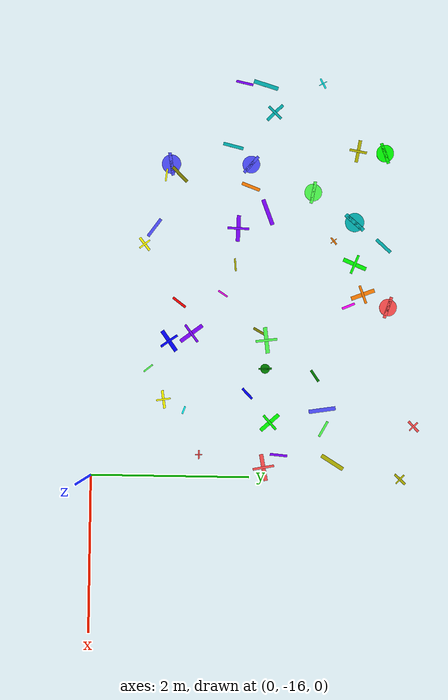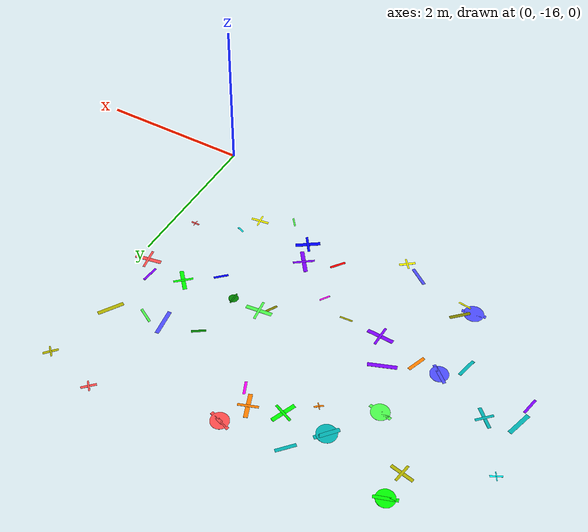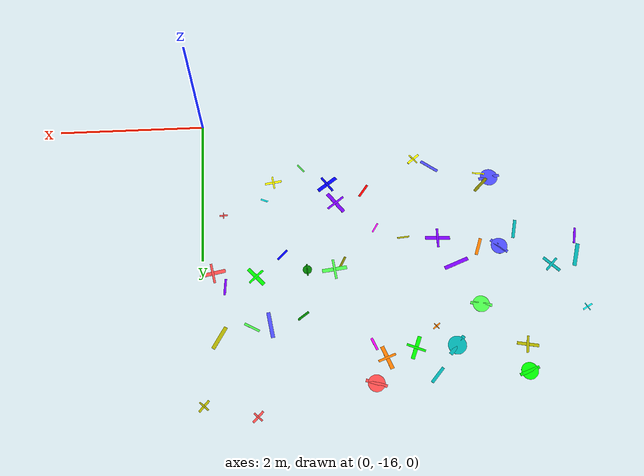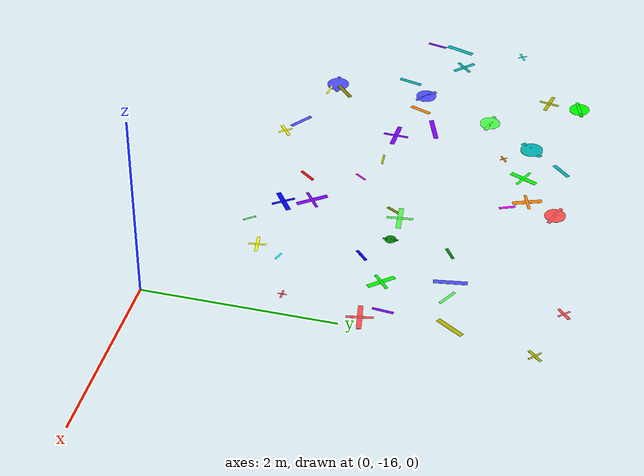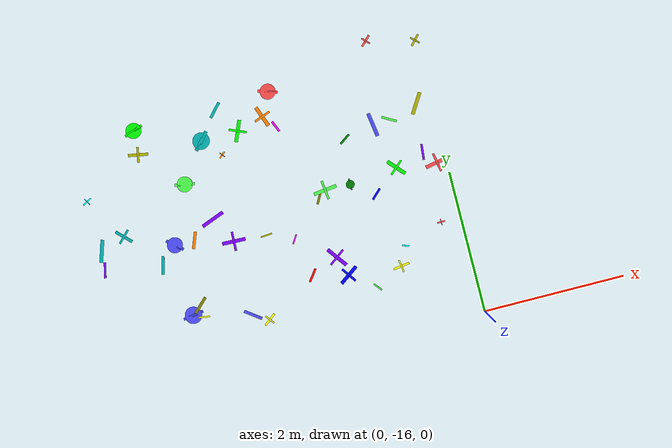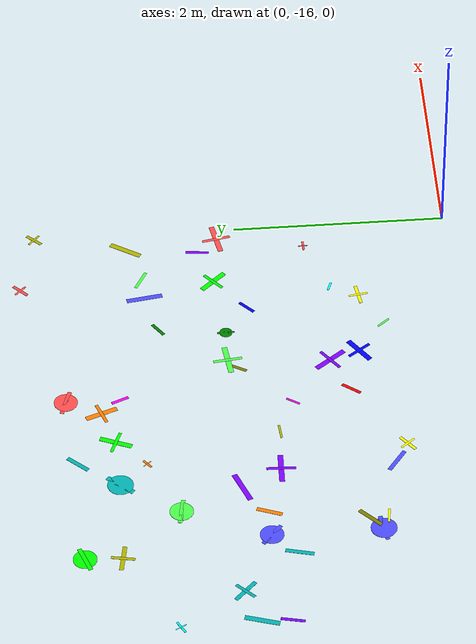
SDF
<sdf version="1.6">
 <world name="default">
  <model name="letter_M_788">
   <static>true</static>
   <pose>-4.97 -13.87 0.004 0 0 1.273</pose>
   <link name="link">
    <visual name="visual">
     <geometry><box><size>0.32 0.05 0.002</size></box></geometry>
     <material>
      <ambient>0.0 0.7 0.7 1</ambient>
      <diffuse>0.0 0.7 0.7 1</diffuse>
      <specular>0.1 0.1 0.1 1</specular>
     </material>
    </visual>
   </link>
  </model>
  <model name="letter_H_789">
   <static>true</static>
   <pose>-4.62 -13.75 0.013 0 0 2.368</pose>
   <link name="link">
    <visual name="visual">
     <geometry><box><size>0.27 0.04 0.002</size></box></geometry>
     <material>
      <ambient>0.0 0.7 0.7 1</ambient>
      <diffuse>0.0 0.7 0.7 1</diffuse>
      <specular>0.1 0.1 0.1 1</specular>
     </material>
    </visual>
    <visual name="visual2">
     <pose>0 0 0.001 0 0 1.57</pose>
     <geometry><box><size>0.22 0.03 0.001</size></box></geometry>
     <material><ambient>0.0 0.7 0.7 1</ambient><diffuse>0.0 0.7 0.7 1</diffuse></material>
    </visual>
   </link>
  </model>
  <model name="letter_N_790">
   <static>true</static>
   <pose>-4.99 -14.14 0.011 0 0 1.359</pose>
   <link name="link">
    <visual name="visual">
     <geometry><box><size>0.22 0.03 0.002</size></box></geometry>
     <material>
      <ambient>0.5 0.0 1.0 1</ambient>
      <diffuse>0.5 0.0 1.0 1</diffuse>
      <specular>0.1 0.1 0.1 1</specular>
     </material>
    </visual>
   </link>
  </model>
  <model name="letter_L_792">
   <static>true</static>
   <pose>-5.00 -13.15 0.010 0 0 0.509</pose>
   <link name="link">
    <visual name="visual">
     <geometry><box><size>0.14 0.02 0.002</size></box></geometry>
     <material>
      <ambient>0.0 1.0 1.0 1</ambient>
      <diffuse>0.0 1.0 1.0 1</diffuse>
      <specular>0.1 0.1 0.1 1</specular>
     </material>
    </visual>
    <visual name="visual2">
     <pose>0 0 0.001 0 0 1.57</pose>
     <geometry><box><size>0.11 0.01 0.001</size></box></geometry>
     <material><ambient>0.0 1.0 1.0 1</ambient><diffuse>0.0 1.0 1.0 1</diffuse></material>
    </visual>
   </link>
  </model>
  <model name="letter_P_863">
   <static>true</static>
   <pose>-3.81 -15.11 0.012 0 0 3.016</pose>
   <link name="link">
    <visual name="visual">
     <geometry><box><size>0.16 0.02 0.002</size></box></geometry>
     <material>
      <ambient>1.0 1.0 0.0 1</ambient>
      <diffuse>1.0 1.0 0.0 1</diffuse>
      <specular>0.1 0.1 0.1 1</specular>
     </material>
    </visual>
   </link>
  </model>
  <model name="letter_G_864">
   <static>true</static>
   <pose>-3.95 -15.05 0.003 0 0 3.299</pose>
   <link name="link">
    <visual name="visual">
     <geometry><box><size>0.29 0.04 0.002</size></box></geometry>
     <material>
      <ambient>0.3 0.3 1.0 1</ambient>
      <diffuse>0.3 0.3 1.0 1</diffuse>
      <specular>0.1 0.1 0.1 1</specular>
     </material>
    </visual>
    <visual name="visual2">
     <geometry><cylinder><radius>0.12</radius><length>0.002</length></cylinder></geometry>
     <material><ambient>0.3 0.3 1.0 1</ambient><diffuse>0.3 0.3 1.0 1</diffuse></material>
    </visual>
   </link>
  </model>
  <model name="letter_P_865">
   <static>true</static>
   <pose>-3.82 -14.94 0.010 0 0 3.917</pose>
   <link name="link">
    <visual name="visual">
     <geometry><box><size>0.26 0.04 0.002</size></box></geometry>
     <material>
      <ambient>0.5 0.5 0.0 1</ambient>
      <diffuse>0.5 0.5 0.0 1</diffuse>
      <specular>0.1 0.1 0.1 1</specular>
     </material>
    </visual>
   </link>
  </model>
  <model name="letter_O_866">
   <static>true</static>
   <pose>-3.96 -14.04 0.008 0 0 2.433</pose>
   <link name="link">
    <visual name="visual">
     <geometry><box><size>0.27 0.04 0.002</size></box></geometry>
     <material>
      <ambient>0.3 0.3 1.0 1</ambient>
      <diffuse>0.3 0.3 1.0 1</diffuse>
      <specular>0.1 0.1 0.1 1</specular>
     </material>
    </visual>
    <visual name="visual2">
     <geometry><cylinder><radius>0.11</radius><length>0.002</length></cylinder></geometry>
     <material><ambient>0.3 0.3 1.0 1</ambient><diffuse>0.3 0.3 1.0 1</diffuse></material>
    </visual>
   </link>
  </model>
  <model name="letter_V_867">
   <static>true</static>
   <pose>-3.68 -14.04 0.010 0 0 1.211</pose>
   <link name="link">
    <visual name="visual">
     <geometry><box><size>0.24 0.04 0.002</size></box></geometry>
     <material>
      <ambient>1.0 0.5 0.0 1</ambient>
      <diffuse>1.0 0.5 0.0 1</diffuse>
      <specular>0.1 0.1 0.1 1</specular>
     </material>
    </visual>
   </link>
  </model>
  <model name="letter_Y_868">
   <static>true</static>
   <pose>-4.19 -14.27 0.010 0 0 1.332</pose>
   <link name="link">
    <visual name="visual">
     <geometry><box><size>0.26 0.04 0.002</size></box></geometry>
     <material>
      <ambient>0.0 0.7 0.7 1</ambient>
      <diffuse>0.0 0.7 0.7 1</diffuse>
      <specular>0.1 0.1 0.1 1</specular>
     </material>
    </visual>
   </link>
  </model>
  <model name="letter_T_869">
   <static>true</static>
   <pose>-4.15 -12.69 0.013 0 0 6.107</pose>
   <link name="link">
    <visual name="visual">
     <geometry><box><size>0.28 0.04 0.002</size></box></geometry>
     <material>
      <ambient>0.7 0.7 0.0 1</ambient>
      <diffuse>0.7 0.7 0.0 1</diffuse>
      <specular>0.1 0.1 0.1 1</specular>
     </material>
    </visual>
    <visual name="visual2">
     <pose>0 0 0.001 0 0 1.57</pose>
     <geometry><box><size>0.22 0.03 0.001</size></box></geometry>
     <material><ambient>0.7 0.7 0.0 1</ambient><diffuse>0.7 0.7 0.0 1</diffuse></material>
    </visual>
   </link>
  </model>
  <model name="letter_Q_870">
   <static>true</static>
   <pose>-3.62 -13.25 0.011 0 0 2.964</pose>
   <link name="link">
    <visual name="visual">
     <geometry><box><size>0.28 0.04 0.002</size></box></geometry>
     <material>
      <ambient>0.3 1.0 0.3 1</ambient>
      <diffuse>0.3 1.0 0.3 1</diffuse>
      <specular>0.1 0.1 0.1 1</specular>
     </material>
    </visual>
    <visual name="visual2">
     <geometry><cylinder><radius>0.11</radius><length>0.002</length></cylinder></geometry>
     <material><ambient>0.3 1.0 0.3 1</ambient><diffuse>0.3 1.0 0.3 1</diffuse></material>
    </visual>
   </link>
  </model>
  <model name="letter_C_871">
   <static>true</static>
   <pose>-4.13 -12.35 0.005 0 0 0.344</pose>
   <link name="link">
    <visual name="visual">
     <geometry><box><size>0.27 0.04 0.002</size></box></geometry>
     <material>
      <ambient>0.0 1.0 0.0 1</ambient>
      <diffuse>0.0 1.0 0.0 1</diffuse>
      <specular>0.1 0.1 0.1 1</specular>
     </material>
    </visual>
    <visual name="visual2">
     <geometry><cylinder><radius>0.11</radius><length>0.002</length></cylinder></geometry>
     <material><ambient>0.0 1.0 0.0 1</ambient><diffuse>0.0 1.0 0.0 1</diffuse></material>
    </visual>
   </link>
  </model>
  <model name="letter_A_942">
   <static>true</static>
   <pose>-2.93 -15.37 0.011 0 0 3.813</pose>
   <link name="link">
    <visual name="visual">
     <geometry><box><size>0.20 0.03 0.002</size></box></geometry>
     <material>
      <ambient>1.0 1.0 0.0 1</ambient>
      <diffuse>1.0 1.0 0.0 1</diffuse>
      <specular>0.1 0.1 0.1 1</specular>
     </material>
    </visual>
    <visual name="visual2">
     <pose>0 0 0.001 0 0 1.57</pose>
     <geometry><box><size>0.16 0.02 0.001</size></box></geometry>
     <material><ambient>1.0 1.0 0.0 1</ambient><diffuse>1.0 1.0 0.0 1</diffuse></material>
    </visual>
   </link>
  </model>
  <model name="letter_Z_943">
   <static>true</static>
   <pose>-3.14 -15.25 0.011 0 0 2.513</pose>
   <link name="link">
    <visual name="visual">
     <geometry><box><size>0.27 0.04 0.002</size></box></geometry>
     <material>
      <ambient>0.3 0.3 1.0 1</ambient>
      <diffuse>0.3 0.3 1.0 1</diffuse>
      <specular>0.1 0.1 0.1 1</specular>
     </material>
    </visual>
   </link>
  </model>
  <model name="letter_W_944">
   <static>true</static>
   <pose>-2.69 -14.22 0.004 0 0 3.229</pose>
   <link name="link">
    <visual name="visual">
     <geometry><box><size>0.16 0.02 0.002</size></box></geometry>
     <material>
      <ambient>0.7 0.7 0.0 1</ambient>
      <diffuse>0.7 0.7 0.0 1</diffuse>
      <specular>0.1 0.1 0.1 1</specular>
     </material>
    </visual>
   </link>
  </model>
  <model name="letter_F_945">
   <static>true</static>
   <pose>-3.15 -14.19 0.004 0 0 6.253</pose>
   <link name="link">
    <visual name="visual">
     <geometry><box><size>0.33 0.05 0.002</size></box></geometry>
     <material>
      <ambient>0.5 0.0 1.0 1</ambient>
      <diffuse>0.5 0.0 1.0 1</diffuse>
      <specular>0.1 0.1 0.1 1</specular>
     </material>
    </visual>
    <visual name="visual2">
     <pose>0 0 0.001 0 0 1.57</pose>
     <geometry><box><size>0.27 0.03 0.001</size></box></geometry>
     <material><ambient>0.5 0.0 1.0 1</ambient><diffuse>0.5 0.0 1.0 1</diffuse></material>
    </visual>
   </link>
  </model>
  <model name="letter_P_946">
   <static>true</static>
   <pose>-3.36 -13.82 0.006 0 0 3.514</pose>
   <link name="link">
    <visual name="visual">
     <geometry><box><size>0.34 0.05 0.002</size></box></geometry>
     <material>
      <ambient>0.5 0.0 1.0 1</ambient>
      <diffuse>0.5 0.0 1.0 1</diffuse>
      <specular>0.1 0.1 0.1 1</specular>
     </material>
    </visual>
   </link>
  </model>
  <model name="letter_O_947">
   <static>true</static>
   <pose>-3.25 -12.72 0.007 0 0 4.002</pose>
   <link name="link">
    <visual name="visual">
     <geometry><box><size>0.30 0.05 0.002</size></box></geometry>
     <material>
      <ambient>0.0 0.7 0.7 1</ambient>
      <diffuse>0.0 0.7 0.7 1</diffuse>
      <specular>0.1 0.1 0.1 1</specular>
     </material>
    </visual>
    <visual name="visual2">
     <geometry><cylinder><radius>0.12</radius><length>0.002</length></cylinder></geometry>
     <material><ambient>0.0 0.7 0.7 1</ambient><diffuse>0.0 0.7 0.7 1</diffuse></material>
    </visual>
   </link>
  </model>
  <model name="letter_F_948">
   <static>true</static>
   <pose>-3.01 -12.98 0.011 0 0 0.682</pose>
   <link name="link">
    <visual name="visual">
     <geometry><box><size>0.11 0.02 0.002</size></box></geometry>
     <material>
      <ambient>1.0 0.5 0.0 1</ambient>
      <diffuse>1.0 0.5 0.0 1</diffuse>
      <specular>0.1 0.1 0.1 1</specular>
     </material>
    </visual>
    <visual name="visual2">
     <pose>0 0 0.001 0 0 1.57</pose>
     <geometry><box><size>0.09 0.01 0.001</size></box></geometry>
     <material><ambient>1.0 0.5 0.0 1</ambient><diffuse>1.0 0.5 0.0 1</diffuse></material>
    </visual>
   </link>
  </model>
  <model name="letter_H_949">
   <static>true</static>
   <pose>-2.72 -12.71 0.011 0 0 1.179</pose>
   <link name="link">
    <visual name="visual">
     <geometry><box><size>0.31 0.05 0.002</size></box></geometry>
     <material>
      <ambient>0.0 1.0 0.0 1</ambient>
      <diffuse>0.0 1.0 0.0 1</diffuse>
      <specular>0.1 0.1 0.1 1</specular>
     </material>
    </visual>
    <visual name="visual2">
     <pose>0 0 0.001 0 0 1.57</pose>
     <geometry><box><size>0.25 0.03 0.001</size></box></geometry>
     <material><ambient>0.0 1.0 0.0 1</ambient><diffuse>0.0 1.0 0.0 1</diffuse></material>
    </visual>
   </link>
  </model>
  <model name="letter_D_950">
   <static>true</static>
   <pose>-2.96 -12.35 0.004 0 0 3.982</pose>
   <link name="link">
    <visual name="visual">
     <geometry><box><size>0.24 0.04 0.002</size></box></geometry>
     <material>
      <ambient>0.0 0.7 0.7 1</ambient>
      <diffuse>0.0 0.7 0.7 1</diffuse>
      <specular>0.1 0.1 0.1 1</specular>
     </material>
    </visual>
   </link>
  </model>
  <model name="letter_Z_1011">
   <static>true</static>
   <pose>-2.20 -14.92 0.011 0 0 0.932</pose>
   <link name="link">
    <visual name="visual">
     <geometry><box><size>0.20 0.03 0.002</size></box></geometry>
     <material>
      <ambient>1.0 0.0 0.0 1</ambient>
      <diffuse>1.0 0.0 0.0 1</diffuse>
      <specular>0.1 0.1 0.1 1</specular>
     </material>
    </visual>
   </link>
  </model>
  <model name="letter_A_1012">
   <static>true</static>
   <pose>-1.71 -15.04 0.010 0 0 0.622</pose>
   <link name="link">
    <visual name="visual">
     <geometry><box><size>0.31 0.05 0.002</size></box></geometry>
     <material>
      <ambient>0.0 0.0 1.0 1</ambient>
      <diffuse>0.0 0.0 1.0 1</diffuse>
      <specular>0.1 0.1 0.1 1</specular>
     </material>
    </visual>
    <visual name="visual2">
     <pose>0 0 0.001 0 0 1.57</pose>
     <geometry><box><size>0.25 0.03 0.001</size></box></geometry>
     <material><ambient>0.0 0.0 1.0 1</ambient><diffuse>0.0 0.0 1.0 1</diffuse></material>
    </visual>
   </link>
  </model>
  <model name="letter_E_1013">
   <static>true</static>
   <pose>-1.81 -14.76 0.008 0 0 5.359</pose>
   <link name="link">
    <visual name="visual">
     <geometry><box><size>0.34 0.05 0.002</size></box></geometry>
     <material>
      <ambient>0.5 0.0 1.0 1</ambient>
      <diffuse>0.5 0.0 1.0 1</diffuse>
      <specular>0.1 0.1 0.1 1</specular>
     </material>
    </visual>
    <visual name="visual2">
     <pose>0 0 0.001 0 0 1.57</pose>
     <geometry><box><size>0.27 0.03 0.001</size></box></geometry>
     <material><ambient>0.5 0.0 1.0 1</ambient><diffuse>0.5 0.0 1.0 1</diffuse></material>
    </visual>
   </link>
  </model>
  <model name="letter_D_1014">
   <static>true</static>
   <pose>-1.85 -13.90 0.006 0 0 1.064</pose>
   <link name="link">
    <visual name="visual">
     <geometry><box><size>0.17 0.03 0.002</size></box></geometry>
     <material>
      <ambient>0.5 0.5 0.0 1</ambient>
      <diffuse>0.5 0.5 0.0 1</diffuse>
      <specular>0.1 0.1 0.1 1</specular>
     </material>
    </visual>
   </link>
  </model>
  <model name="letter_F_1015">
   <static>true</static>
   <pose>-1.74 -13.81 0.007 0 0 0.124</pose>
   <link name="link">
    <visual name="visual">
     <geometry><box><size>0.33 0.05 0.002</size></box></geometry>
     <material>
      <ambient>0.3 1.0 0.3 1</ambient>
      <diffuse>0.3 1.0 0.3 1</diffuse>
      <specular>0.1 0.1 0.1 1</specular>
     </material>
    </visual>
    <visual name="visual2">
     <pose>0 0 0.001 0 0 1.57</pose>
     <geometry><box><size>0.27 0.03 0.001</size></box></geometry>
     <material><ambient>0.3 1.0 0.3 1</ambient><diffuse>0.3 1.0 0.3 1</diffuse></material>
    </visual>
   </link>
  </model>
  <model name="letter_P_1016">
   <static>true</static>
   <pose>-2.32 -14.37 0.011 0 0 0.993</pose>
   <link name="link">
    <visual name="visual">
     <geometry><box><size>0.14 0.02 0.002</size></box></geometry>
     <material>
      <ambient>1.0 0.0 1.0 1</ambient>
      <diffuse>1.0 0.0 1.0 1</diffuse>
      <specular>0.1 0.1 0.1 1</specular>
     </material>
    </visual>
   </link>
  </model>
  <model name="letter_M_1017">
   <static>true</static>
   <pose>-2.19 -12.78 0.012 0 0 5.116</pose>
   <link name="link">
    <visual name="visual">
     <geometry><box><size>0.17 0.03 0.002</size></box></geometry>
     <material>
      <ambient>1.0 0.0 1.0 1</ambient>
      <diffuse>1.0 0.0 1.0 1</diffuse>
      <specular>0.1 0.1 0.1 1</specular>
     </material>
    </visual>
   </link>
  </model>
  <model name="letter_T_1018">
   <static>true</static>
   <pose>-2.34 -12.60 0.004 0 0 5.076</pose>
   <link name="link">
    <visual name="visual">
     <geometry><box><size>0.31 0.05 0.002</size></box></geometry>
     <material>
      <ambient>1.0 0.5 0.0 1</ambient>
      <diffuse>1.0 0.5 0.0 1</diffuse>
      <specular>0.1 0.1 0.1 1</specular>
     </material>
    </visual>
    <visual name="visual2">
     <pose>0 0 0.001 0 0 1.57</pose>
     <geometry><box><size>0.24 0.03 0.001</size></box></geometry>
     <material><ambient>1.0 0.5 0.0 1</ambient><diffuse>1.0 0.5 0.0 1</diffuse></material>
    </visual>
   </link>
  </model>
  <model name="letter_C_1021">
   <static>true</static>
   <pose>-2.18 -12.28 0.008 0 0 2.822</pose>
   <link name="link">
    <visual name="visual">
     <geometry><box><size>0.28 0.04 0.002</size></box></geometry>
     <material>
      <ambient>1.0 0.3 0.3 1</ambient>
      <diffuse>1.0 0.3 0.3 1</diffuse>
      <specular>0.1 0.1 0.1 1</specular>
     </material>
    </visual>
    <visual name="visual2">
     <geometry><cylinder><radius>0.11</radius><length>0.002</length></cylinder></geometry>
     <material><ambient>1.0 0.3 0.3 1</ambient><diffuse>1.0 0.3 0.3 1</diffuse></material>
    </visual>
   </link>
  </model>
  <model name="letter_W_1075">
   <static>true</static>
   <pose>-1.36 -15.30 0.005 0 0 2.252</pose>
   <link name="link">
    <visual name="visual">
     <geometry><box><size>0.14 0.02 0.002</size></box></geometry>
     <material>
      <ambient>0.3 1.0 0.3 1</ambient>
      <diffuse>0.3 1.0 0.3 1</diffuse>
      <specular>0.1 0.1 0.1 1</specular>
     </material>
    </visual>
   </link>
  </model>
  <model name="letter_T_1076">
   <static>true</static>
   <pose>-0.97 -15.10 0.005 0 0 3.293</pose>
   <link name="link">
    <visual name="visual">
     <geometry><box><size>0.23 0.03 0.002</size></box></geometry>
     <material>
      <ambient>1.0 1.0 0.0 1</ambient>
      <diffuse>1.0 1.0 0.0 1</diffuse>
      <specular>0.1 0.1 0.1 1</specular>
     </material>
    </visual>
    <visual name="visual2">
     <pose>0 0 0.001 0 0 1.57</pose>
     <geometry><box><size>0.18 0.02 0.001</size></box></geometry>
     <material><ambient>1.0 1.0 0.0 1</ambient><diffuse>1.0 1.0 0.0 1</diffuse></material>
    </visual>
   </link>
  </model>
  <model name="letter_P_1077">
   <static>true</static>
   <pose>-0.84 -14.84 0.004 0 0 5.916</pose>
   <link name="link">
    <visual name="visual">
     <geometry><box><size>0.10 0.02 0.002</size></box></geometry>
     <material>
      <ambient>0.0 1.0 1.0 1</ambient>
      <diffuse>0.0 1.0 1.0 1</diffuse>
      <specular>0.1 0.1 0.1 1</specular>
     </material>
    </visual>
   </link>
  </model>
  <model name="letter_C_1078">
   <static>true</static>
   <pose>-1.38 -13.82 0.006 0 0 1.606</pose>
   <link name="link">
    <visual name="visual">
     <geometry><box><size>0.16 0.02 0.002</size></box></geometry>
     <material>
      <ambient>0.0 0.5 0.0 1</ambient>
      <diffuse>0.0 0.5 0.0 1</diffuse>
      <specular>0.1 0.1 0.1 1</specular>
     </material>
    </visual>
    <visual name="visual2">
     <geometry><cylinder><radius>0.06</radius><length>0.002</length></cylinder></geometry>
     <material><ambient>0.0 0.5 0.0 1</ambient><diffuse>0.0 0.5 0.0 1</diffuse></material>
    </visual>
   </link>
  </model>
  <model name="letter_T_1079">
   <static>true</static>
   <pose>-0.70 -13.75 0.012 0 0 2.307</pose>
   <link name="link">
    <visual name="visual">
     <geometry><box><size>0.30 0.05 0.002</size></box></geometry>
     <material>
      <ambient>0.0 1.0 0.0 1</ambient>
      <diffuse>0.0 1.0 0.0 1</diffuse>
      <specular>0.1 0.1 0.1 1</specular>
     </material>
    </visual>
    <visual name="visual2">
     <pose>0 0 0.001 0 0 1.57</pose>
     <geometry><box><size>0.24 0.03 0.001</size></box></geometry>
     <material><ambient>0.0 1.0 0.0 1</ambient><diffuse>0.0 1.0 0.0 1</diffuse></material>
    </visual>
   </link>
  </model>
  <model name="letter_S_1080">
   <static>true</static>
   <pose>-1.06 -14.04 0.005 0 0 0.770</pose>
   <link name="link">
    <visual name="visual">
     <geometry><box><size>0.18 0.03 0.002</size></box></geometry>
     <material>
      <ambient>0.0 0.0 1.0 1</ambient>
      <diffuse>0.0 0.0 1.0 1</diffuse>
      <specular>0.1 0.1 0.1 1</specular>
     </material>
    </visual>
   </link>
  </model>
  <model name="letter_B_1081">
   <static>true</static>
   <pose>-1.30 -13.19 0.011 0 0 0.616</pose>
   <link name="link">
    <visual name="visual">
     <geometry><box><size>0.17 0.03 0.002</size></box></geometry>
     <material>
      <ambient>0.0 0.5 0.0 1</ambient>
      <diffuse>0.0 0.5 0.0 1</diffuse>
      <specular>0.1 0.1 0.1 1</specular>
     </material>
    </visual>
   </link>
  </model>
  <model name="letter_V_1082">
   <static>true</static>
   <pose>-0.63 -13.07 0.009 0 0 5.781</pose>
   <link name="link">
    <visual name="visual">
     <geometry><box><size>0.22 0.03 0.002</size></box></geometry>
     <material>
      <ambient>0.3 1.0 0.3 1</ambient>
      <diffuse>0.3 1.0 0.3 1</diffuse>
      <specular>0.1 0.1 0.1 1</specular>
     </material>
    </visual>
   </link>
  </model>
  <model name="letter_Y_1083">
   <static>true</static>
   <pose>-0.87 -13.09 0.006 0 0 4.865</pose>
   <link name="link">
    <visual name="visual">
     <geometry><box><size>0.34 0.05 0.002</size></box></geometry>
     <material>
      <ambient>0.3 0.3 1.0 1</ambient>
      <diffuse>0.3 0.3 1.0 1</diffuse>
      <specular>0.1 0.1 0.1 1</specular>
     </material>
    </visual>
   </link>
  </model>
  <model name="letter_A_1086">
   <static>true</static>
   <pose>-0.68 -11.93 0.004 0 0 3.930</pose>
   <link name="link">
    <visual name="visual">
     <geometry><box><size>0.18 0.03 0.002</size></box></geometry>
     <material>
      <ambient>1.0 0.3 0.3 1</ambient>
      <diffuse>1.0 0.3 0.3 1</diffuse>
      <specular>0.1 0.1 0.1 1</specular>
     </material>
    </visual>
    <visual name="visual2">
     <pose>0 0 0.001 0 0 1.57</pose>
     <geometry><box><size>0.14 0.02 0.001</size></box></geometry>
     <material><ambient>1.0 0.3 0.3 1</ambient><diffuse>1.0 0.3 0.3 1</diffuse></material>
    </visual>
   </link>
  </model>
  <model name="letter_E_1135">
   <static>true</static>
   <pose>-0.28 -14.64 0.009 0 0 3.171</pose>
   <link name="link">
    <visual name="visual">
     <geometry><box><size>0.11 0.02 0.002</size></box></geometry>
     <material>
      <ambient>1.0 0.3 0.3 1</ambient>
      <diffuse>1.0 0.3 0.3 1</diffuse>
      <specular>0.1 0.1 0.1 1</specular>
     </material>
    </visual>
    <visual name="visual2">
     <pose>0 0 0.001 0 0 1.57</pose>
     <geometry><box><size>0.09 0.01 0.001</size></box></geometry>
     <material><ambient>1.0 0.3 0.3 1</ambient><diffuse>1.0 0.3 0.3 1</diffuse></material>
    </visual>
   </link>
  </model>
  <model name="letter_R_1136">
   <static>true</static>
   <pose>-0.29 -13.63 0.005 0 0 1.480</pose>
   <link name="link">
    <visual name="visual">
     <geometry><box><size>0.22 0.03 0.002</size></box></geometry>
     <material>
      <ambient>0.5 0.0 1.0 1</ambient>
      <diffuse>0.5 0.0 1.0 1</diffuse>
      <specular>0.1 0.1 0.1 1</specular>
     </material>
    </visual>
   </link>
  </model>
  <model name="letter_T_1137">
   <static>true</static>
   <pose>-0.13 -13.82 0.013 0 0 3.331</pose>
   <link name="link">
    <visual name="visual">
     <geometry><box><size>0.34 0.05 0.002</size></box></geometry>
     <material>
      <ambient>1.0 0.3 0.3 1</ambient>
      <diffuse>1.0 0.3 0.3 1</diffuse>
      <specular>0.1 0.1 0.1 1</specular>
     </material>
    </visual>
    <visual name="visual2">
     <pose>0 0 0.001 0 0 1.57</pose>
     <geometry><box><size>0.27 0.03 0.001</size></box></geometry>
     <material><ambient>1.0 0.3 0.3 1</ambient><diffuse>1.0 0.3 0.3 1</diffuse></material>
    </visual>
   </link>
  </model>
  <model name="letter_B_1139">
   <static>true</static>
   <pose>-0.21 -12.95 0.006 0 0 4.158</pose>
   <link name="link">
    <visual name="visual">
     <geometry><box><size>0.32 0.05 0.002</size></box></geometry>
     <material>
      <ambient>0.7 0.7 0.0 1</ambient>
      <diffuse>0.7 0.7 0.0 1</diffuse>
      <specular>0.1 0.1 0.1 1</specular>
     </material>
    </visual>
   </link>
  </model>
  <model name="letter_H_1141">
   <static>true</static>
   <pose>-0.01 -12.09 0.009 0 0 0.829</pose>
   <link name="link">
    <visual name="visual">
     <geometry><box><size>0.18 0.03 0.002</size></box></geometry>
     <material>
      <ambient>0.7 0.7 0.0 1</ambient>
      <diffuse>0.7 0.7 0.0 1</diffuse>
      <specular>0.1 0.1 0.1 1</specular>
     </material>
    </visual>
    <visual name="visual2">
     <pose>0 0 0.001 0 0 1.57</pose>
     <geometry><box><size>0.15 0.02 0.001</size></box></geometry>
     <material><ambient>0.7 0.7 0.0 1</ambient><diffuse>0.7 0.7 0.0 1</diffuse></material>
    </visual>
   </link>
  </model>
 </world>
</sdf>
